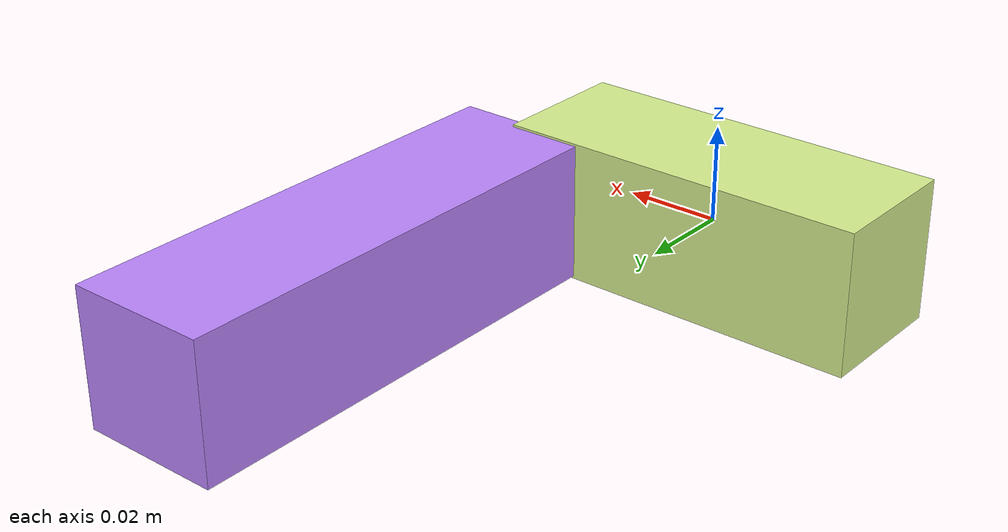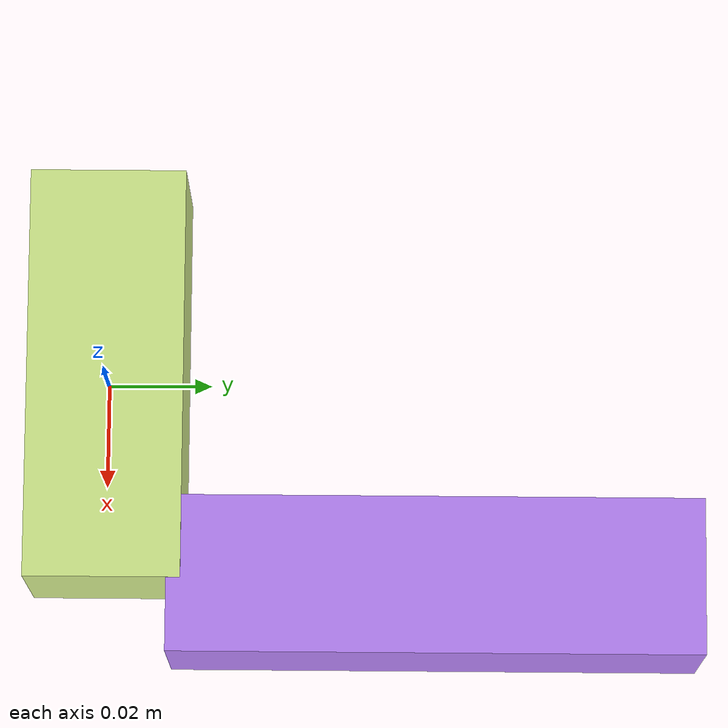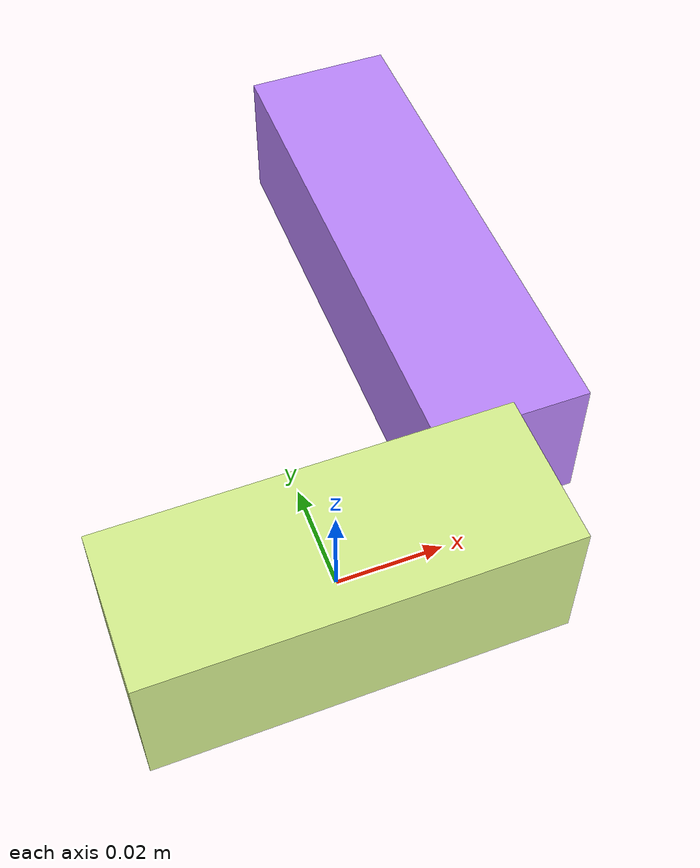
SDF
<sdf version="1.4"><world name="default"><model name="object0"><link name="link1"><pose>0 0 0 0 0 0</pose><inertial><pose>0 0 0 0 0 0</pose><mass>0.04276435528761932</mass><inertia><ixx>6.414653293142898e-06</ixx><ixy>0</ixy><iyy>2.55573006014681e-05</iyy><ixz>0</ixz><iyz>0</iyz><izz>2.55573006014681e-05</izz></inertia></inertial><visual name="link1_visual"><pose>0 0  0 0 0 0</pose><geometry><box><size>0.07919325053262838 0.03 0.03</size></box></geometry><material><diffuse>0.8434478565519825 0.9455755503406891 0.563492675216531 1</diffuse></material></visual><collision><pose>0 0  0 0 0 0</pose><geometry><box><size>0.07919325053262838 0.03 0.03</size></box></geometry></collision></link><link name="link2"><pose>0.03861949041591223 0.06351273081789163 0 0 0 0</pose><inertial><pose>0 0 0 0 0 0</pose><mass>0.05535296670895663</mass><inertia><ixx>5.2347191206011316e-05</ixx><ixy>0</ixy><iyy>8.030792920024457e-06</iyy><ixz>0</ixz><iyz>0</iyz><izz>5.261934329233035e-05</izz></inertia></inertial><visual name="link2_visual"><pose>0 0  0 0 0 0</pose><geometry><box><size>0.03 0.10250549390547527 0.028999999999999998</size></box></geometry><material><diffuse>0.7400692811742469 0.5313110829478346 0.9961993435973653 1</diffuse></material></visual><collision><pose>0 0  0 0 0 0</pose><geometry><box><size>0.03 0.10250549390547527 0.028999999999999998</size></box></geometry></collision></link><joint name="link_joint_0" type="fixed"><parent>link1</parent><child>link2</child><pose>0 0 0 0 0 0</pose><axis><xyz>0 0 1</xyz></axis></joint></model></world></sdf>
